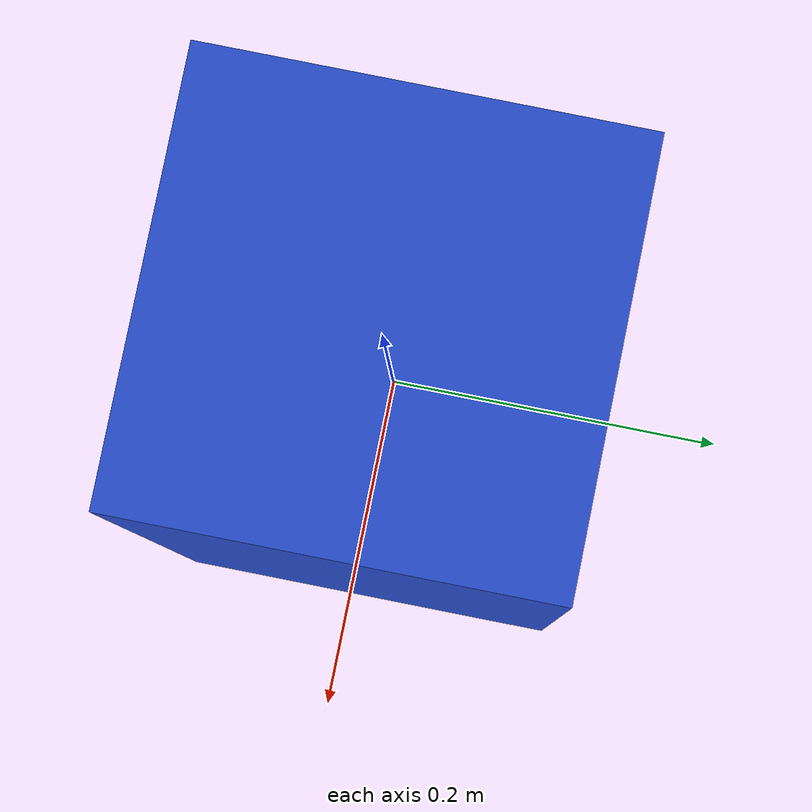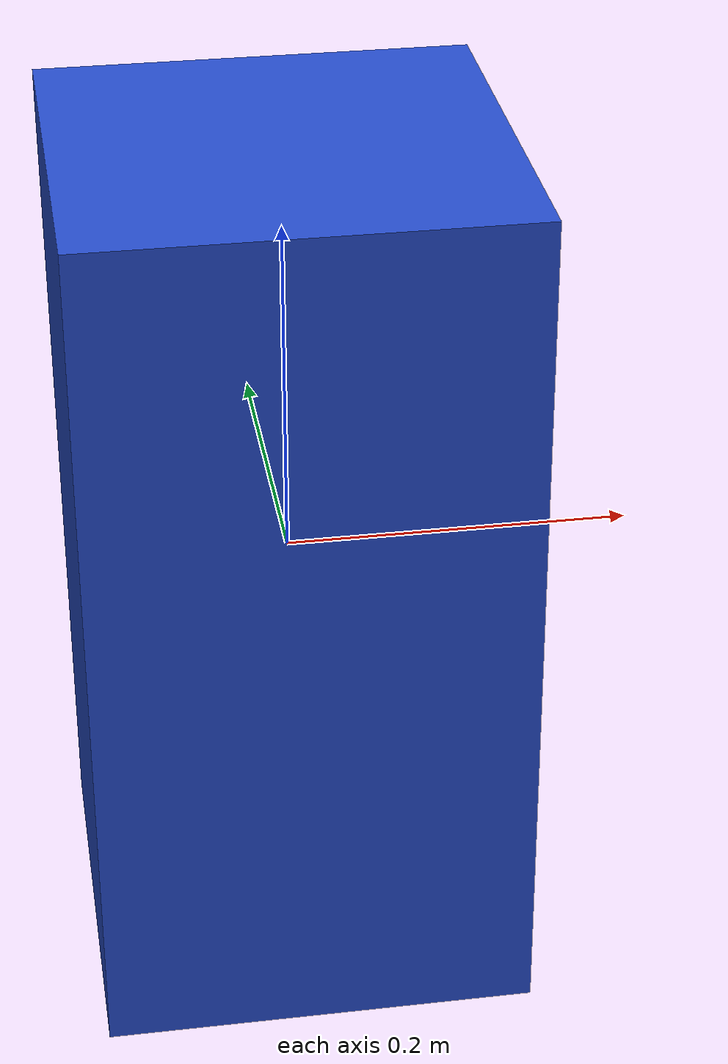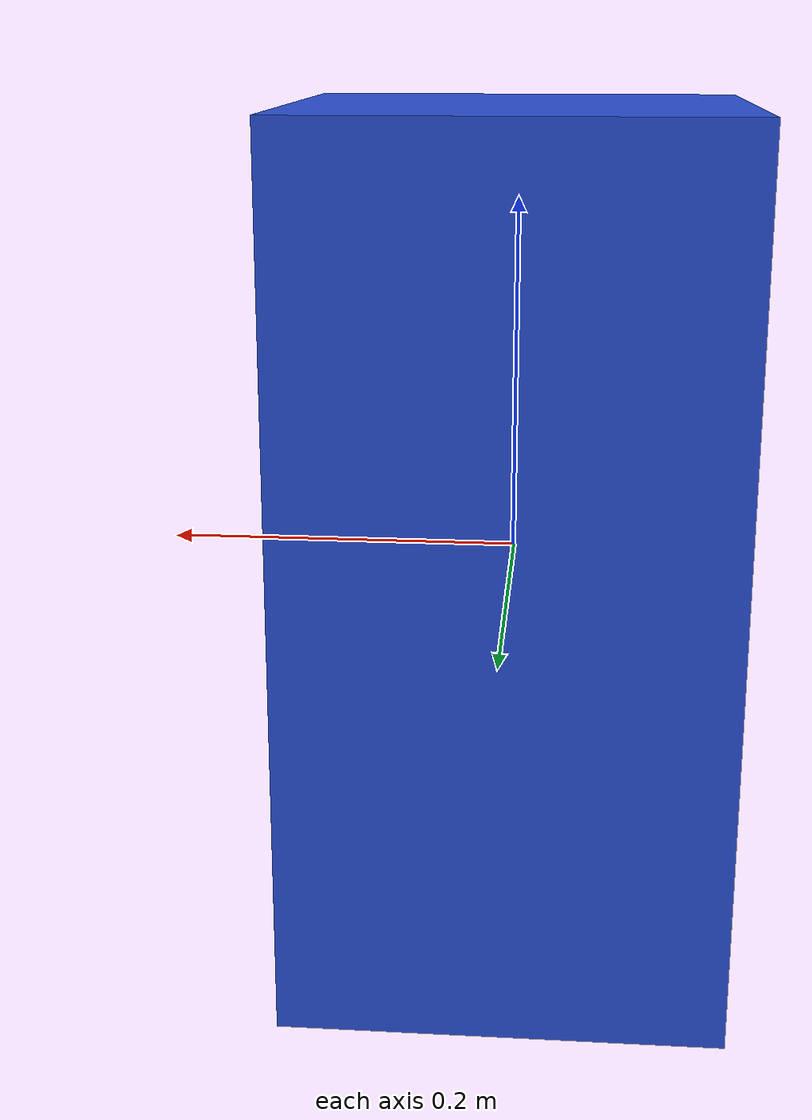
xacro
<?xml version="1.0"?>
<robot xmlns:sensor="http://playerstage.sourceforge.net/gazebo/xmlschema/#sensor"
       xmlns:controller="http://playerstage.sourceforge.net/gazebo/xmlschema/#controller"
       xmlns:interface="http://playerstage.sourceforge.net/gazebo/xmlschema/#interface"
       xmlns:xacro="http://ros.org/wiki/xacro"
       name="simple_box">
  <xacro:property name="box_tx" value="0.0" />
  <xacro:property name="box_ty" value="0.0" />
  <xacro:property name="box_tz" value="0.0" />

  <xacro:property name="box_qr" value="0.0" />
  <xacro:property name="box_qp" value="0.0" />
  <xacro:property name="box_qy" value="0.0" />

  <xacro:property name="size_x" value="0.25" />
  <xacro:property name="size_y" value="0.25" />
  <xacro:property name="size_z" value="0.50" />

  <xacro:property name="mass" value="1" />

  <link name="box">
    <inertial>
      <mass value="${mass}" />
      <!-- center of mass (com) is defined w.r.t. link local coordinate system -->
      <origin xyz="0.0 0.0 0.0" rpy="0.0 0.0 0.0" />
      <inertia  ixx="1.0" ixy="0.0"  ixz="0.0"  iyy="100.0"  iyz="0.0"  izz="1.0" />
    </inertial>
    <visual>
      <!-- visual origin is defined w.r.t. link local coordinate system -->
      <origin xyz="${box_tx} ${box_ty} ${box_tz}" rpy="${box_qr} ${box_qp} ${box_qy}" />
      <geometry>
        <box size="${size_x} ${size_y} ${size_z}" />
      </geometry>
    </visual>
    <collision>
      <!-- collision origin is defined w.r.t. link local coordinate system -->
     <origin xyz="${box_tx} ${box_ty} ${box_tz}" rpy="${box_qr} ${box_qp} ${box_qy}" />
      <geometry>
         <box size="${size_x} ${size_y} ${size_z}" />
      </geometry>
    </collision>
  </link>
  <gazebo reference="box">
    <material>Gazebo/Blue</material>
    <turnGravityOff>true</turnGravityOff>
  </gazebo>

 </robot>
